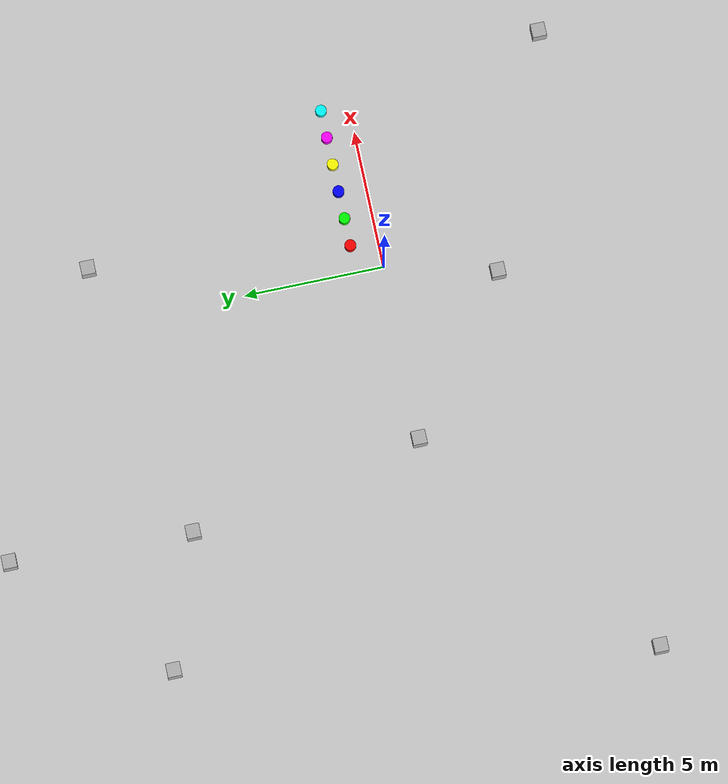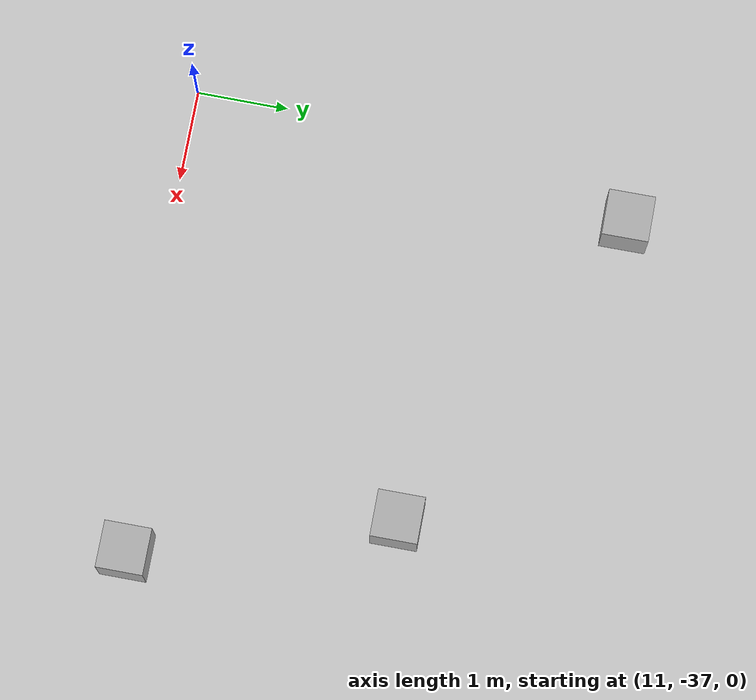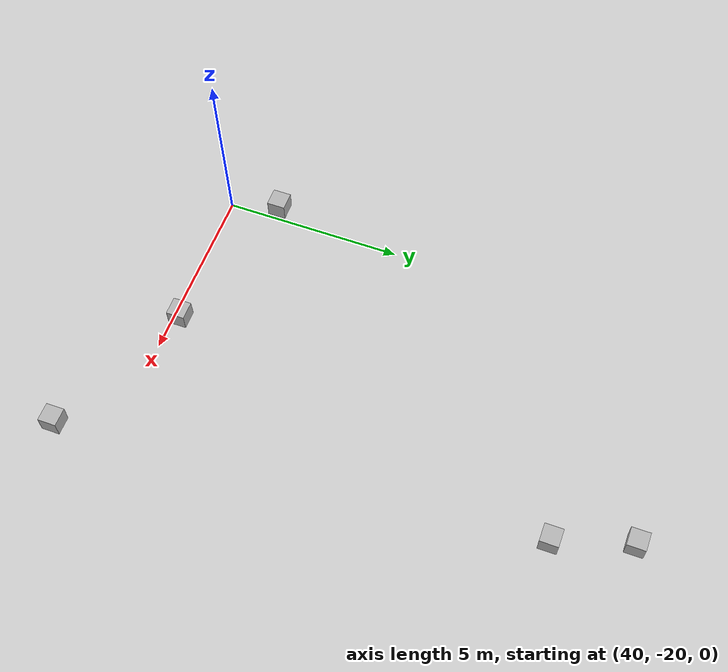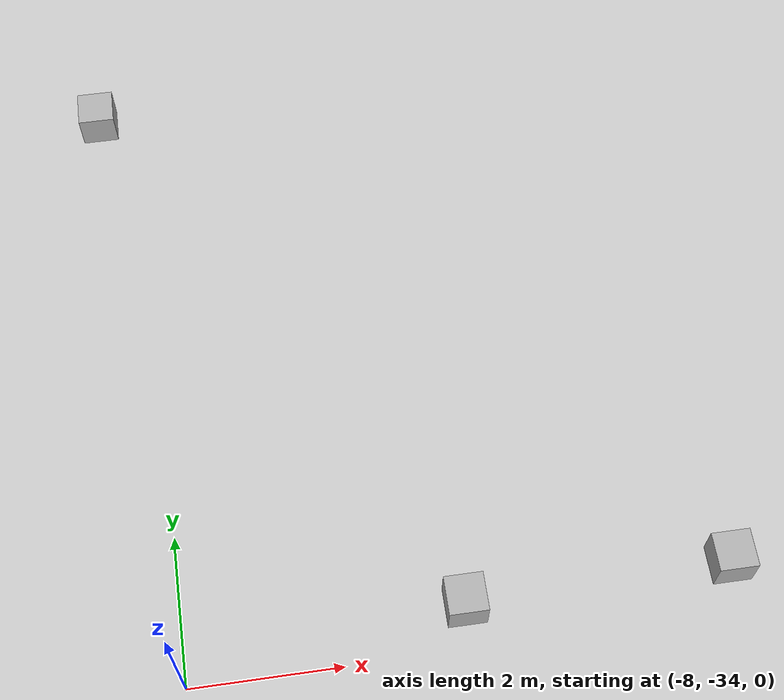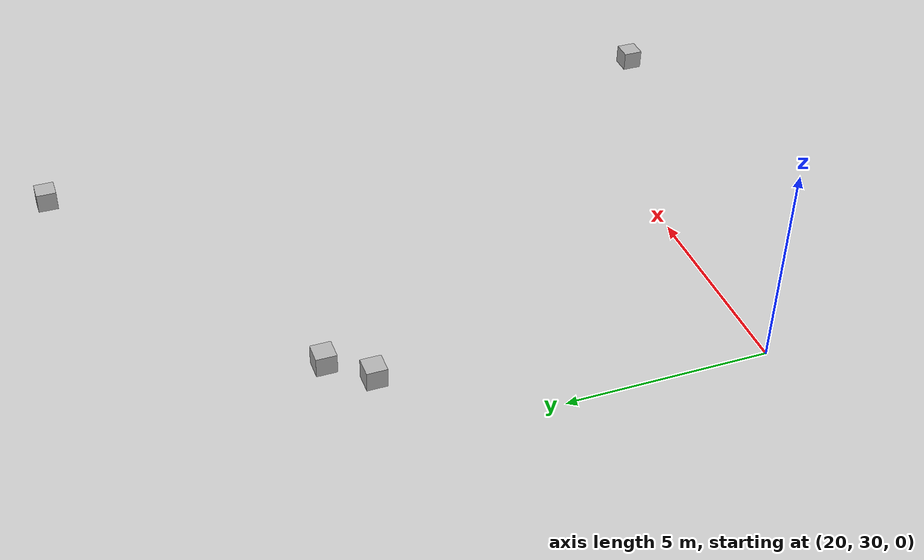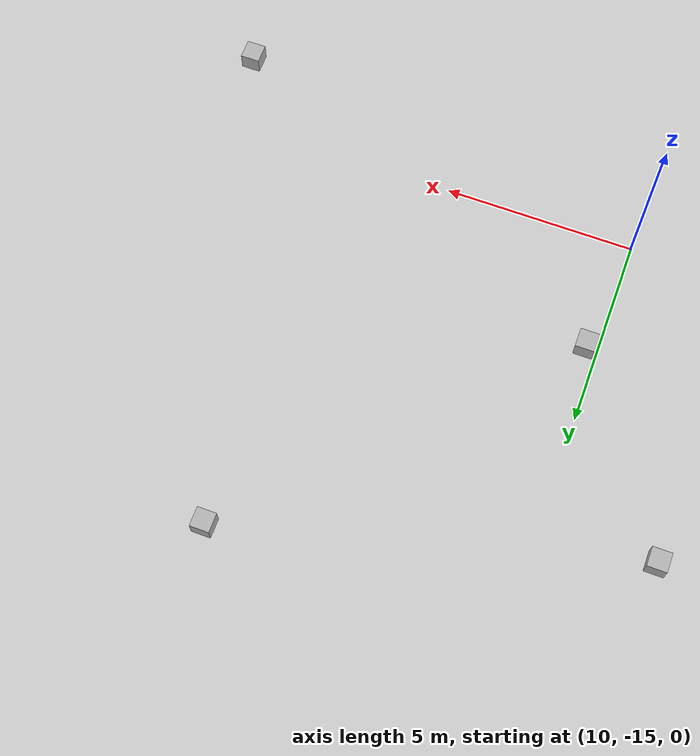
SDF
<sdf version="1.6">
 <world name="default">
  <light name="sun" type="directional">
   <pose>0 0 10 0 -0 0</pose>
   <diffuse>0.8 0.8 0.8 1</diffuse>
   <specular>0.2 0.2 0.2 1</specular>
   <attenuation>
    <range>1000</range>
    <constant>0.9</constant>
    <linear>0.01</linear>
    <quadratic>0.001</quadratic>
   </attenuation>
   <direction>-0.5 0.1 -0.9</direction>
  </light>
  <model name="ground_plane">
   <static>1</static>
   <link name="link">
    <collision name="collision">
     <geometry><plane><normal>0 0 1</normal><size>150 150</size></plane></geometry>
     <surface><friction><ode><mu>100</mu><mu2>50</mu2></ode></friction></surface>
    </collision>
    <visual name="visual">
     <cast_shadows>0</cast_shadows>
     <geometry><plane><normal>0 0 1</normal><size>100 100</size></plane></geometry>
     <material>
      <ambient>0.8 0.8 0.8 1</ambient>
      <diffuse>0.8 0.8 0.8 1</diffuse>
      <specular>0.8 0.8 0.8 1</specular>
     </material>
    </visual>
   </link>
  </model>
  <gravity>0 0 -9.8</gravity>
  <magnetic_field>6e-06 2.3e-05 -4.2e-05</magnetic_field>
  <atmosphere type="adiabatic"/>
  <physics name="default_physics" default="0" type="ode">
   <max_step_size>0.001</max_step_size>
   <real_time_factor>1</real_time_factor>
   <real_time_update_rate>1000</real_time_update_rate>
  </physics>
  <scene><ambient>0.4 0.4 0.4 1</ambient><background>0.7 0.7 0.7 1</background><shadows>1</shadows></scene>
  <audio><device>default</device></audio>
  <spherical_coordinates>
   <surface_model>EARTH_WGS84</surface_model>
   <latitude_deg>0</latitude_deg>
   <longitude_deg>0</longitude_deg>
   <elevation>0</elevation>
   <heading_deg>0</heading_deg>
  </spherical_coordinates>
  <model name="agent3">
   <link name="link_0">
    <inertial>
     <mass>1</mass>
     <inertia><ixx>0</ixx><ixy>0</ixy><ixz>0</ixz><iyy>0</iyy><iyz>0</iyz><izz>0</izz></inertia>
    </inertial>
    <visual name="visual">
     <geometry><cylinder><radius>0.2</radius><length>0.4</length></cylinder></geometry>
     <material>
      <ambient>0.0 0.0 1.0 1</ambient>
      <diffuse>0.0 0.0 1.0 1</diffuse>
      <specular>0.0 0.0 1.0 1</specular>
     </material>
    </visual>
    <collision name="collision">
     <geometry><cylinder><radius>0.2</radius><length>0.4</length></cylinder></geometry>
     <surface>
      <friction>
       <ode><mu>0</mu><mu2>1</mu2><fdir1>0 0 0</fdir1><slip1>0</slip1><slip2>0</slip2></ode>
       <torsional>
        <coefficient>1</coefficient>
        <patch_radius>0</patch_radius>
        <surface_radius>0</surface_radius>
        <use_patch_radius>1</use_patch_radius>
        <ode><slip>0</slip></ode>
       </torsional>
      </friction>
      <bounce><restitution_coefficient>0</restitution_coefficient><threshold>1e+06</threshold></bounce>
      <contact>
       <collide_without_contact>0</collide_without_contact>
       <collide_without_contact_bitmask>1</collide_without_contact_bitmask>
       <collide_bitmask>1</collide_bitmask>
       <ode>
        <soft_cfm>0</soft_cfm>
        <soft_erp>0.2</soft_erp>
        <kp>1e+13</kp>
        <kd>1</kd>
        <max_vel>0.01</max_vel>
        <min_depth>0</min_depth>
       </ode>
       <bullet>
        <split_impulse>1</split_impulse>
        <split_impulse_penetration_threshold>-0.01</split_impulse_penetration_threshold>
        <soft_cfm>0</soft_cfm>
        <soft_erp>0.2</soft_erp>
        <kp>1e+13</kp>
        <kd>1</kd>
       </bullet>
      </contact>
     </surface>
    </collision>
   </link>
   <static>0</static>
   <plugin filename="ignition-gazebo-velocity-control-system" name="ignition::gazebo::systems::VelocityControl"/>
   <plugin filename="ignition-gazebo-pose-publisher-system" name="ignition::gazebo::systems::PosePublisher">
    <publish_link_pose>false</publish_link_pose>
    <publish_sensor_pose>false</publish_sensor_pose>
    <publish_collision_pose>false</publish_collision_pose>
    <publish_visual_pose>false</publish_visual_pose>
    <publish_nested_model_pose>true</publish_nested_model_pose>
   </plugin>
   <pose>3 1 0 0 -0 0</pose>
  </model>
  <model name="agent2">
   <link name="link_0">
    <inertial>
     <mass>1</mass>
     <inertia><ixx>0</ixx><ixy>0</ixy><ixz>0</ixz><iyy>0</iyy><iyz>0</iyz><izz>0</izz></inertia>
    </inertial>
    <visual name="visual">
     <geometry><cylinder><radius>0.2</radius><length>0.4</length></cylinder></geometry>
     <material>
      <ambient>0.0 1.0 0.0 1</ambient>
      <diffuse>0.0 1.0 0.0 1</diffuse>
      <specular>0.0 1.0 0.0 1</specular>
      <lighting>1</lighting>
     </material>
    </visual>
    <collision name="collision">
     <geometry><cylinder><radius>0.2</radius><length>0.4</length></cylinder></geometry>
     <surface>
      <friction>
       <ode><mu>0</mu><mu2>1</mu2><fdir1>0 0 0</fdir1><slip1>0</slip1><slip2>0</slip2></ode>
       <torsional>
        <coefficient>1</coefficient>
        <patch_radius>0</patch_radius>
        <surface_radius>0</surface_radius>
        <use_patch_radius>1</use_patch_radius>
        <ode><slip>0</slip></ode>
       </torsional>
      </friction>
      <bounce><restitution_coefficient>0</restitution_coefficient><threshold>1e+06</threshold></bounce>
      <contact>
       <collide_without_contact>0</collide_without_contact>
       <collide_without_contact_bitmask>1</collide_without_contact_bitmask>
       <collide_bitmask>1</collide_bitmask>
       <ode>
        <soft_cfm>0</soft_cfm>
        <soft_erp>0.2</soft_erp>
        <kp>1e+13</kp>
        <kd>1</kd>
        <max_vel>0.01</max_vel>
        <min_depth>0</min_depth>
       </ode>
       <bullet>
        <split_impulse>1</split_impulse>
        <split_impulse_penetration_threshold>-0.01</split_impulse_penetration_threshold>
        <soft_cfm>0</soft_cfm>
        <soft_erp>0.2</soft_erp>
        <kp>1e+13</kp>
        <kd>1</kd>
       </bullet>
      </contact>
     </surface>
    </collision>
   </link>
   <static>0</static>
   <plugin filename="ignition-gazebo-velocity-control-system" name="ignition::gazebo::systems::VelocityControl"/>
   <plugin filename="ignition-gazebo-pose-publisher-system" name="ignition::gazebo::systems::PosePublisher">
    <publish_link_pose>false</publish_link_pose>
    <publish_sensor_pose>false</publish_sensor_pose>
    <publish_collision_pose>false</publish_collision_pose>
    <publish_visual_pose>false</publish_visual_pose>
    <publish_nested_model_pose>true</publish_nested_model_pose>
   </plugin>
   <pose>2 1 0 0 -0 0</pose>
  </model>
  <model name="agent4">
   <link name="link_0">
    <inertial>
     <mass>1</mass>
     <inertia><ixx>0</ixx><ixy>0</ixy><ixz>0</ixz><iyy>0</iyy><iyz>0</iyz><izz>0</izz></inertia>
    </inertial>
    <visual name="visual">
     <geometry><cylinder><radius>0.2</radius><length>0.4</length></cylinder></geometry>
     <material>
      <ambient>1.0 1.0 0.0 1</ambient>
      <diffuse>1.0 1.0 0.0 1</diffuse>
      <specular>1.0 1.0 0.0 1</specular>
      <lighting>1</lighting>
     </material>
    </visual>
    <collision name="collision">
     <geometry><cylinder><radius>0.2</radius><length>0.4</length></cylinder></geometry>
     <surface>
      <friction>
       <ode><mu>0</mu><mu2>1</mu2><fdir1>0 0 0</fdir1><slip1>0</slip1><slip2>0</slip2></ode>
       <torsional>
        <coefficient>1</coefficient>
        <patch_radius>0</patch_radius>
        <surface_radius>0</surface_radius>
        <use_patch_radius>1</use_patch_radius>
        <ode><slip>0</slip></ode>
       </torsional>
      </friction>
      <bounce><restitution_coefficient>0</restitution_coefficient><threshold>1e+06</threshold></bounce>
      <contact>
       <collide_without_contact>0</collide_without_contact>
       <collide_without_contact_bitmask>1</collide_without_contact_bitmask>
       <collide_bitmask>1</collide_bitmask>
       <ode>
        <soft_cfm>0</soft_cfm>
        <soft_erp>0.2</soft_erp>
        <kp>1e+13</kp>
        <kd>1</kd>
        <max_vel>0.01</max_vel>
        <min_depth>0</min_depth>
       </ode>
       <bullet>
        <split_impulse>1</split_impulse>
        <split_impulse_penetration_threshold>-0.01</split_impulse_penetration_threshold>
        <soft_cfm>0</soft_cfm>
        <soft_erp>0.2</soft_erp>
        <kp>1e+13</kp>
        <kd>1</kd>
       </bullet>
      </contact>
     </surface>
    </collision>
   </link>
   <static>0</static>
   <plugin filename="ignition-gazebo-velocity-control-system" name="ignition::gazebo::systems::VelocityControl"/>
   <plugin filename="ignition-gazebo-pose-publisher-system" name="ignition::gazebo::systems::PosePublisher">
    <publish_link_pose>false</publish_link_pose>
    <publish_sensor_pose>false</publish_sensor_pose>
    <publish_collision_pose>false</publish_collision_pose>
    <publish_visual_pose>false</publish_visual_pose>
    <publish_nested_model_pose>true</publish_nested_model_pose>
   </plugin>
   <pose>4 1 0 0 -0 0</pose>
  </model>
  <model name="agent1">
   <link name="link_0">
    <inertial>
     <mass>1</mass>
     <inertia><ixx>0</ixx><ixy>0</ixy><ixz>0</ixz><iyy>0</iyy><iyz>0</iyz><izz>0</izz></inertia>
    </inertial>
    <visual name="visual">
     <geometry><cylinder><radius>0.2</radius><length>0.4</length></cylinder></geometry>
     <material>
      <ambient>1.0 0.0 0.0 1</ambient>
      <diffuse>1.0 0.0 0.0 1</diffuse>
      <specular>1.0 0.0 0.0 1</specular>
      <lighting>1</lighting>
     </material>
    </visual>
    <collision name="collision">
     <geometry><cylinder><radius>0.2</radius><length>0.4</length></cylinder></geometry>
     <surface>
      <friction>
       <ode><mu>0</mu><mu2>1</mu2><fdir1>0 0 0</fdir1><slip1>0</slip1><slip2>0</slip2></ode>
       <torsional>
        <coefficient>1</coefficient>
        <patch_radius>0</patch_radius>
        <surface_radius>0</surface_radius>
        <use_patch_radius>1</use_patch_radius>
        <ode><slip>0</slip></ode>
       </torsional>
      </friction>
      <bounce><restitution_coefficient>0</restitution_coefficient><threshold>1e+06</threshold></bounce>
      <contact>
       <collide_without_contact>0</collide_without_contact>
       <collide_without_contact_bitmask>1</collide_without_contact_bitmask>
       <collide_bitmask>1</collide_bitmask>
       <ode>
        <soft_cfm>0</soft_cfm>
        <soft_erp>0.2</soft_erp>
        <kp>1e+13</kp>
        <kd>1</kd>
        <max_vel>0.01</max_vel>
        <min_depth>0</min_depth>
       </ode>
       <bullet>
        <split_impulse>1</split_impulse>
        <split_impulse_penetration_threshold>-0.01</split_impulse_penetration_threshold>
        <soft_cfm>0</soft_cfm>
        <soft_erp>0.2</soft_erp>
        <kp>1e+13</kp>
        <kd>1</kd>
       </bullet>
      </contact>
     </surface>
    </collision>
   </link>
   <static>0</static>
   <plugin filename="ignition-gazebo-velocity-control-system" name="ignition::gazebo::systems::VelocityControl"/>
   <plugin filename="ignition-gazebo-pose-publisher-system" name="ignition::gazebo::systems::PosePublisher">
    <publish_link_pose>false</publish_link_pose>
    <publish_sensor_pose>false</publish_sensor_pose>
    <publish_collision_pose>false</publish_collision_pose>
    <publish_visual_pose>false</publish_visual_pose>
    <publish_nested_model_pose>true</publish_nested_model_pose>
   </plugin>
   <pose>1 1 0 0 -0 0</pose>
  </model>
  <model name="agent5">
   <link name="link_0">
    <inertial>
     <mass>1</mass>
     <inertia><ixx>0</ixx><ixy>0</ixy><ixz>0</ixz><iyy>0</iyy><iyz>0</iyz><izz>0</izz></inertia>
    </inertial>
    <visual name="visual">
     <geometry><cylinder><radius>0.2</radius><length>0.4</length></cylinder></geometry>
     <material>
      <lighting>1</lighting>
      <ambient>1.0 0.0 1.0 1</ambient>
      <diffuse>1.0 0.0 1.0 1</diffuse>
      <specular>1.0 0.0 1.0 1</specular>
     </material>
    </visual>
    <collision name="collision">
     <geometry><cylinder><radius>0.2</radius><length>0.4</length></cylinder></geometry>
     <surface>
      <friction>
       <ode><mu>0</mu><mu2>1</mu2><fdir1>0 0 0</fdir1><slip1>0</slip1><slip2>0</slip2></ode>
       <torsional>
        <coefficient>1</coefficient>
        <patch_radius>0</patch_radius>
        <surface_radius>0</surface_radius>
        <use_patch_radius>1</use_patch_radius>
        <ode><slip>0</slip></ode>
       </torsional>
      </friction>
      <bounce><restitution_coefficient>0</restitution_coefficient><threshold>1e+06</threshold></bounce>
      <contact>
       <collide_without_contact>0</collide_without_contact>
       <collide_without_contact_bitmask>1</collide_without_contact_bitmask>
       <collide_bitmask>1</collide_bitmask>
       <ode>
        <soft_cfm>0</soft_cfm>
        <soft_erp>0.2</soft_erp>
        <kp>1e+13</kp>
        <kd>1</kd>
        <max_vel>0.01</max_vel>
        <min_depth>0</min_depth>
       </ode>
       <bullet>
        <split_impulse>1</split_impulse>
        <split_impulse_penetration_threshold>-0.01</split_impulse_penetration_threshold>
        <soft_cfm>0</soft_cfm>
        <soft_erp>0.2</soft_erp>
        <kp>1e+13</kp>
        <kd>1</kd>
       </bullet>
      </contact>
     </surface>
    </collision>
   </link>
   <static>0</static>
   <plugin filename="ignition-gazebo-velocity-control-system" name="ignition::gazebo::systems::VelocityControl"/>
   <plugin filename="ignition-gazebo-pose-publisher-system" name="ignition::gazebo::systems::PosePublisher">
    <publish_link_pose>false</publish_link_pose>
    <publish_sensor_pose>false</publish_sensor_pose>
    <publish_collision_pose>false</publish_collision_pose>
    <publish_visual_pose>false</publish_visual_pose>
    <publish_nested_model_pose>true</publish_nested_model_pose>
   </plugin>
   <pose>5 1 0 0 -0 0</pose>
  </model>
  <model name="agent0">
   <link name="link_0">
    <inertial>
     <mass>1</mass>
     <inertia><ixx>0</ixx><ixy>0</ixy><ixz>0</ixz><iyy>0</iyy><iyz>0</iyz><izz>0</izz></inertia>
    </inertial>
    <visual name="visual">
     <geometry><cylinder><radius>0.2</radius><length>0.4</length></cylinder></geometry>
     <material>
      <ambient>0.0 1.0 1.0 1</ambient>
      <diffuse>0.0 1.0 1.0 1</diffuse>
      <specular>1.0 1.0 1.0 1</specular>
      <lighting>1</lighting>
     </material>
    </visual>
    <collision name="collision">
     <geometry><cylinder><radius>0.2</radius><length>0.4</length></cylinder></geometry>
     <surface>
      <friction>
       <ode><mu>0</mu><mu2>1</mu2><fdir1>0 0 0</fdir1><slip1>0</slip1><slip2>0</slip2></ode>
       <torsional>
        <coefficient>1</coefficient>
        <patch_radius>0</patch_radius>
        <surface_radius>0</surface_radius>
        <use_patch_radius>1</use_patch_radius>
        <ode><slip>0</slip></ode>
       </torsional>
      </friction>
      <bounce><restitution_coefficient>0</restitution_coefficient><threshold>1e+06</threshold></bounce>
      <contact>
       <collide_without_contact>0</collide_without_contact>
       <collide_without_contact_bitmask>1</collide_without_contact_bitmask>
       <collide_bitmask>1</collide_bitmask>
       <ode>
        <soft_cfm>0</soft_cfm>
        <soft_erp>0.2</soft_erp>
        <kp>1e+13</kp>
        <kd>1</kd>
        <max_vel>0.01</max_vel>
        <min_depth>0</min_depth>
       </ode>
       <bullet>
        <split_impulse>1</split_impulse>
        <split_impulse_penetration_threshold>-0.01</split_impulse_penetration_threshold>
        <soft_cfm>0</soft_cfm>
        <soft_erp>0.2</soft_erp>
        <kp>1e+13</kp>
        <kd>1</kd>
       </bullet>
      </contact>
     </surface>
    </collision>
   </link>
   <static>0</static>
   <plugin filename="ignition-gazebo-velocity-control-system" name="ignition::gazebo::systems::VelocityControl"/>
   <plugin filename="ignition-gazebo-pose-publisher-system" name="ignition::gazebo::systems::PosePublisher">
    <publish_link_pose>false</publish_link_pose>
    <publish_sensor_pose>false</publish_sensor_pose>
    <publish_collision_pose>false</publish_collision_pose>
    <publish_visual_pose>false</publish_visual_pose>
    <publish_nested_model_pose>true</publish_nested_model_pose>
   </plugin>
   <pose>6 1 0 0 -0 0</pose>
  </model>
  <include>
   <uri>target</uri>
   <name>target0</name>
   <pose>7.140259468991353 -7.111094532488536 0.5 0 -0 0</pose>
  </include>
  <include>
   <uri>target</uri>
   <name>target1</name>
   <pose>-29.390176786049828 31.332125135732 0.5 0 -0 0</pose>
  </include>
  <include>
   <uri>target</uri>
   <name>target2</name>
   <pose>15.347253390117572 -33.977044348118035 0.5 0 -0 0</pose>
  </include>
  <include>
   <uri>target</uri>
   <name>target3</name>
   <pose>-17.222718837790687 -25.000332331359964 0.5 0 -0 0</pose>
  </include>
  <include>
   <uri>target</uri>
   <name>target4</name>
   <pose>49.655699253945514 -45.5443617549567 0.5 0 -0 0</pose>
  </include>
  <include>
   <uri>target</uri>
   <name>target5</name>
   <pose>10.319061096818501 -11.839401408088214 0.5 0 -0 0</pose>
  </include>
  <include>
   <uri>target</uri>
   <name>target6</name>
   <pose>17.49648471349559 -4.3168848941694336 0.5 0 -0 0</pose>
  </include>
  <include>
   <uri>target</uri>
   <name>target7</name>
   <pose>16.184632005235116 -36.70218552877872 0.5 0 -0 0</pose>
  </include>
  <include>
   <uri>target</uri>
   <name>target8</name>
   <pose>48.241324901119086 46.938816040491886 0.5 0 -0 0</pose>
  </include>
  <include>
   <uri>target</uri>
   <name>target9</name>
   <pose>-45.57393671353791 -49.59448558415925 0.5 0 -0 0</pose>
  </include>
  <include>
   <uri>target</uri>
   <name>target10</name>
   <pose>44.10022713958341 -19.71394379709277 0.5 0 -0 0</pose>
  </include>
  <include>
   <uri>target</uri>
   <name>target11</name>
   <pose>39.819624453918834 -18.563619504354932 0.5 0 -0 0</pose>
  </include>
  <include>
   <uri>target</uri>
   <name>target12</name>
   <pose>-6.396904237587776 -43.50058238731495 0.5 0 -0 0</pose>
  </include>
  <include>
   <uri>target</uri>
   <name>target13</name>
   <pose>34.406789766190215 -34.35810816125936 0.5 0 -0 0</pose>
  </include>
  <include>
   <uri>target</uri>
   <name>target14</name>
   <pose>-8.712979228515927 -46.3075130941371 0.5 0 -0 0</pose>
  </include>
  <include>
   <uri>target</uri>
   <name>target15</name>
   <pose>31.79828644296319 15.789093875910908 0.5 0 -0 0</pose>
  </include>
  <include>
   <uri>target</uri>
   <name>target16</name>
   <pose>35.51257407736 -35.031186502859846 0.5 0 -0 0</pose>
  </include>
  <include>
   <uri>target</uri>
   <name>target17</name>
   <pose>-12.582518225191109 10.130454711363946 0.5 0 -0 0</pose>
  </include>
  <include>
   <uri>target</uri>
   <name>target18</name>
   <pose>27.55127010728279 -40.33941668156473 0.5 0 -0 0</pose>
  </include>
  <include>
   <uri>target</uri>
   <name>target19</name>
   <pose>30.744975202475572 44.76939242234907 0.5 0 -0 0</pose>
  </include>
  <include>
   <uri>target</uri>
   <name>target20</name>
   <pose>-8.591916825169875 -25.451812385924487 0.5 0 -0 0</pose>
  </include>
  <include>
   <uri>target</uri>
   <name>target21</name>
   <pose>11.72527709741663 -32.15395892792748 0.5 0 -0 0</pose>
  </include>
  <include>
   <uri>target</uri>
   <name>target22</name>
   <pose>-4.426514131896177 -33.50621934203678 0.5 0 -0 0</pose>
  </include>
  <include>
   <uri>target</uri>
   <name>target23</name>
   <pose>32.1055674361497 27.751138937539935 0.5 0 -0 0</pose>
  </include>
  <include>
   <uri>target</uri>
   <name>target24</name>
   <pose>-15.242874377918305 -6.528945100556562 0.5 0 -0 0</pose>
  </include>
  <include>
   <uri>target</uri>
   <name>target25</name>
   <pose>21.257320078963744 -16.834277736450453 0.5 0 -0 0</pose>
  </include>
  <include>
   <uri>target</uri>
   <name>target26</name>
   <pose>-42.00749675797874 -5.194407399898395 0.5 0 -0 0</pose>
  </include>
  <include>
   <uri>target</uri>
   <name>target27</name>
   <pose>-10.941305815711601 36.954554539740286 0.5 0 -0 0</pose>
  </include>
  <include>
   <uri>target</uri>
   <name>target28</name>
   <pose>-25.85917581891951 2.5353848876590206 0.5 0 -0 0</pose>
  </include>
  <include>
   <uri>target</uri>
   <name>target29</name>
   <pose>2.0109694321412874 10.21048687389493 0.5 0 -0 0</pose>
  </include>
  <include>
   <uri>target</uri>
   <name>target30</name>
   <pose>-1.0613883478235664 -3.8558737203565627 0.5 0 -0 0</pose>
  </include>
  <include>
   <uri>target</uri>
   <name>target31</name>
   <pose>-7.956464185347791 8.493504933439574 0.5 0 -0 0</pose>
  </include>
  <include>
   <uri>target</uri>
   <name>target32</name>
   <pose>-1.0104241209063716 -33.42035594677924 0.5 0 -0 0</pose>
  </include>
  <include>
   <uri>target</uri>
   <name>target33</name>
   <pose>46.86781985609426 -8.48263067821673 0.5 0 -0 0</pose>
  </include>
  <include>
   <uri>target</uri>
   <name>target34</name>
   <pose>-49.71695733176297 3.5418451316212938 0.5 0 -0 0</pose>
  </include>
  <include>
   <uri>target</uri>
   <name>target35</name>
   <pose>-40.72565946578083 -39.12435873730309 0.5 0 -0 0</pose>
  </include>
  <include>
   <uri>target</uri>
   <name>target36</name>
   <pose>49.26880657637538 -1.494464919492863 0.5 0 -0 0</pose>
  </include>
  <include>
   <uri>target</uri>
   <name>target37</name>
   <pose>-6.348918546288132 0.11121848422556013 0.5 0 -0 0</pose>
  </include>
  <include>
   <uri>target</uri>
   <name>target38</name>
   <pose>22.6215200566661 39.79415356273188 0.5 0 -0 0</pose>
  </include>
  <include>
   <uri>target</uri>
   <name>target39</name>
   <pose>-7.668939733225955 14.952911823737537 0.5 0 -0 0</pose>
  </include>
  <include>
   <uri>target</uri>
   <name>target40</name>
   <pose>-34.637265846400524 -26.26575430999557 0.5 0 -0 0</pose>
  </include>
  <include>
   <uri>target</uri>
   <name>target41</name>
   <pose>18.70199456481508 14.260022271177945 0.5 0 -0 0</pose>
  </include>
  <include>
   <uri>target</uri>
   <name>target42</name>
   <pose>32.942319384537086 -2.1057046764323175 0.5 0 -0 0</pose>
  </include>
  <include>
   <uri>target</uri>
   <name>target43</name>
   <pose>46.23558468839565 -6.464331707943494 0.5 0 -0 0</pose>
  </include>
  <include>
   <uri>target</uri>
   <name>target44</name>
   <pose>21.824237919830765 38.868149436299944 0.5 0 -0 0</pose>
  </include>
  <include>
   <uri>target</uri>
   <name>target45</name>
   <pose>41.30986448423634 26.68385355448595 0.5 0 -0 0</pose>
  </include>
  <include>
   <uri>target</uri>
   <name>target46</name>
   <pose>48.131935906942005 -21.451426921312976 0.5 0 -0 0</pose>
  </include>
  <include>
   <uri>target</uri>
   <name>target47</name>
   <pose>-35.87264689729777 9.513276368878735 0.5 0 -0 0</pose>
  </include>
  <include>
   <uri>target</uri>
   <name>target48</name>
   <pose>-30.802667896556656 -15.01313136328448 0.5 0 -0 0</pose>
  </include>
  <include>
   <uri>target</uri>
   <name>target49</name>
   <pose>-30.534368435482385 -29.229733358119738 0.5 0 -0 0</pose>
  </include>
 </world>
</sdf>

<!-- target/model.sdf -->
<sdf version="1.5">
<model name='target'>
<link name='box_link'>
<inertial>
  <inertia>
    <ixx>0.16666</ixx>
    <ixy>0</ixy>
    <ixz>0</ixz>
    <iyy>0.16666</iyy>
    <iyz>0</iyz>
    <izz>0.16666</izz>
  </inertia>
  <mass>0</mass>
  <pose>0 0 0 0 -0 0</pose>
</inertial>
<visual name='box_visual'>
  <geometry>
    <box>
      <size>0.5 0.5 0.5</size>
    </box>
  </geometry>
  <material>
    <ambient>0.3 0.3 0.3 1</ambient>
    <diffuse>0.7 0.7 0.7 1</diffuse>
    <specular>1 1 1 1</specular>
  </material>
</visual>
<pose>0 0 0 0 -0 0</pose>
<enable_wind>false</enable_wind>
</link>
<static>true</static>
<self_collide>false</self_collide>
    <plugin
      filename="ignition-gazebo-pose-publisher-system"
      name="ignition::gazebo::systems::PosePublisher">
      <publish_link_pose>false</publish_link_pose>
      <publish_sensor_pose>false</publish_sensor_pose>
      <publish_collision_pose>false</publish_collision_pose>
      <publish_visual_pose>false</publish_visual_pose>
      <publish_nested_model_pose>true</publish_nested_model_pose>
    </plugin>
</model>
</sdf>
